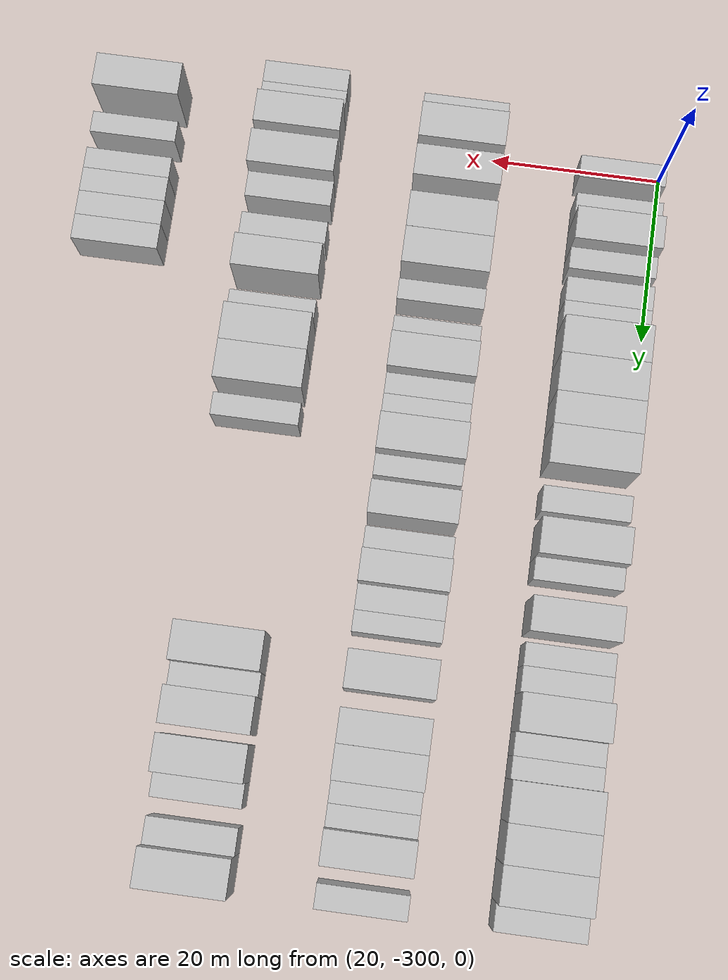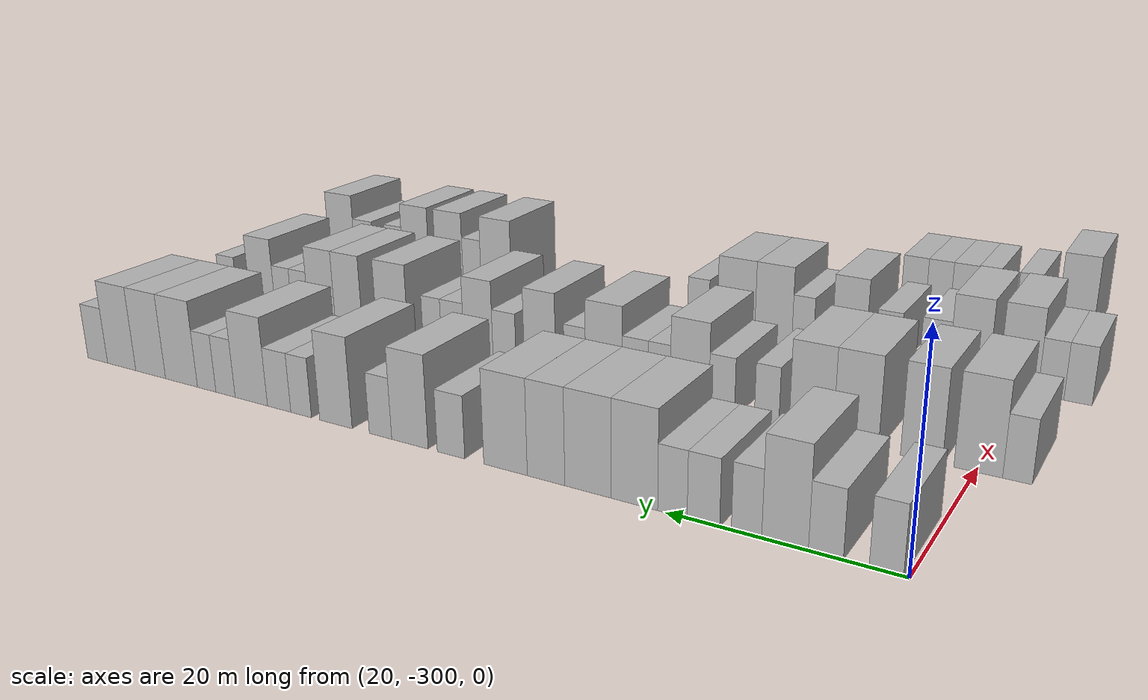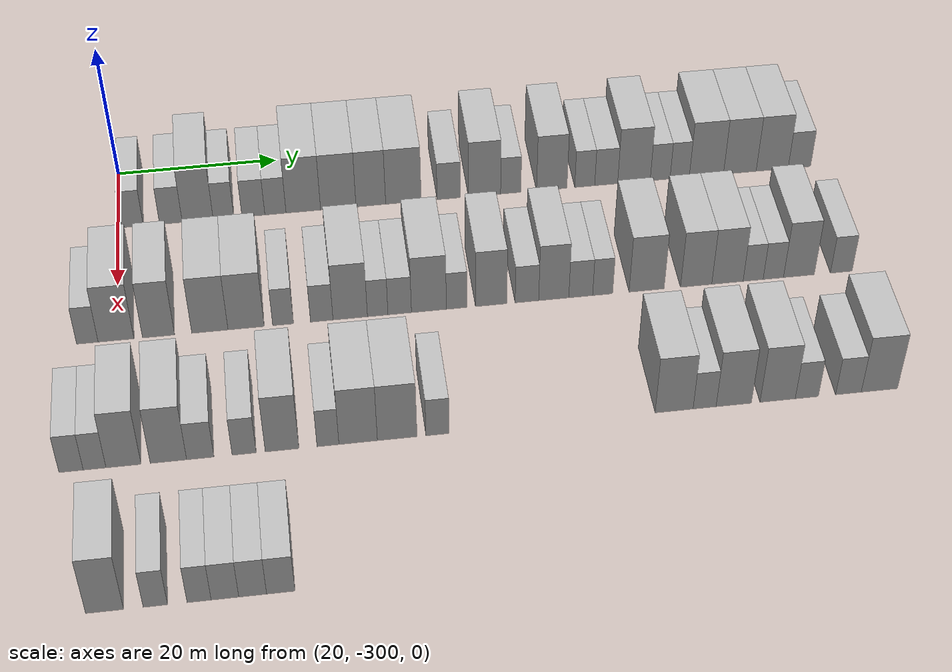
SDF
<sdf version="1.6">
 <world name="default">
  <model name="building_9">
   <static>1</static>
   <pose>25.0000 -298.2334 0 0.000000 0.000000 0.000000</pose>
   <link name="link">
    <pose>0 0 3.00 0 0 0</pose>
    <collision name="collision"><geometry><box><size>10.0000 2.6289 6.0000</size></box></geometry></collision>
    <visual name="visual">
     <cast_shadows>0</cast_shadows>
     <geometry><box><size>10.0000 2.6289 6.0000</size></box></geometry>
     <material>
      <script>
       <uri>model://HANNAS_wall/materials/scripts</uri>
       <uri>model://HANNAS_wall/materials/textures</uri>
       <name>vrc/HANNAS_wall</name>
      </script>
     </material>
    </visual>
   </link>
  </model>
  <model name="building_10">
   <static>1</static>
   <pose>25.0000 -293.5261 0 0.000000 0.000000 0.000000</pose>
   <link name="link">
    <pose>0 0 3.00 0 0 0</pose>
    <collision name="collision"><geometry><box><size>10.0000 2.7855 6.0000</size></box></geometry></collision>
    <visual name="visual">
     <cast_shadows>0</cast_shadows>
     <geometry><box><size>10.0000 2.7855 6.0000</size></box></geometry>
     <material>
      <script>
       <uri>model://HANNAS_wall/materials/scripts</uri>
       <uri>model://HANNAS_wall/materials/textures</uri>
       <name>vrc/HANNAS_wall</name>
      </script>
     </material>
    </visual>
   </link>
  </model>
  <model name="building_11">
   <static>1</static>
   <pose>25.0000 -290.2199 0 0.000000 0.000000 0.000000</pose>
   <link name="link">
    <pose>0 0 4.50 0 0 0</pose>
    <collision name="collision"><geometry><box><size>10.0000 3.8269 9.0000</size></box></geometry></collision>
    <visual name="visual">
     <cast_shadows>0</cast_shadows>
     <geometry><box><size>10.0000 3.8269 9.0000</size></box></geometry>
     <material>
      <script>
       <uri>model://HANNAS_wall/materials/scripts</uri>
       <uri>model://HANNAS_wall/materials/textures</uri>
       <name>vrc/HANNAS_wall</name>
      </script>
     </material>
    </visual>
   </link>
  </model>
  <model name="building_12">
   <static>1</static>
   <pose>25.0000 -287.0254 0 0.000000 0.000000 0.000000</pose>
   <link name="link">
    <pose>0 0 3.00 0 0 0</pose>
    <collision name="collision"><geometry><box><size>10.0000 2.5621 6.0000</size></box></geometry></collision>
    <visual name="visual">
     <cast_shadows>0</cast_shadows>
     <geometry><box><size>10.0000 2.5621 6.0000</size></box></geometry>
     <material>
      <script>
       <uri>model://HANNAS_wall/materials/scripts</uri>
       <uri>model://HANNAS_wall/materials/textures</uri>
       <name>vrc/HANNAS_wall</name>
      </script>
     </material>
    </visual>
   </link>
  </model>
  <model name="building_13">
   <static>1</static>
   <pose>25.0000 -283.3257 0 0.000000 0.000000 0.000000</pose>
   <link name="link">
    <pose>0 0 3.00 0 0 0</pose>
    <collision name="collision"><geometry><box><size>10.0000 2.8373 6.0000</size></box></geometry></collision>
    <visual name="visual">
     <cast_shadows>0</cast_shadows>
     <geometry><box><size>10.0000 2.8373 6.0000</size></box></geometry>
     <material>
      <script>
       <uri>model://HANNAS_wall/materials/scripts</uri>
       <uri>model://HANNAS_wall/materials/textures</uri>
       <name>vrc/HANNAS_wall</name>
      </script>
     </material>
    </visual>
   </link>
  </model>
  <model name="building_14">
   <static>1</static>
   <pose>25.0000 -280.5883 0 0.000000 0.000000 0.000000</pose>
   <link name="link">
    <pose>0 0 3.00 0 0 0</pose>
    <collision name="collision"><geometry><box><size>10.0000 2.6376 6.0000</size></box></geometry></collision>
    <visual name="visual">
     <cast_shadows>0</cast_shadows>
     <geometry><box><size>10.0000 2.6376 6.0000</size></box></geometry>
     <material>
      <script>
       <uri>model://HANNAS_wall/materials/scripts</uri>
       <uri>model://HANNAS_wall/materials/textures</uri>
       <name>vrc/HANNAS_wall</name>
      </script>
     </material>
    </visual>
   </link>
  </model>
  <model name="building_15">
   <static>1</static>
   <pose>25.0000 -277.1161 0 0.000000 0.000000 0.000000</pose>
   <link name="link">
    <pose>0 0 4.50 0 0 0</pose>
    <collision name="collision"><geometry><box><size>10.0000 4.3069 9.0000</size></box></geometry></collision>
    <visual name="visual">
     <cast_shadows>0</cast_shadows>
     <geometry><box><size>10.0000 4.3069 9.0000</size></box></geometry>
     <material>
      <script>
       <uri>model://HANNAS_wall/materials/scripts</uri>
       <uri>model://HANNAS_wall/materials/textures</uri>
       <name>vrc/HANNAS_wall</name>
      </script>
     </material>
    </visual>
   </link>
  </model>
  <model name="building_16">
   <static>1</static>
   <pose>25.0000 -272.7496 0 0.000000 0.000000 0.000000</pose>
   <link name="link">
    <pose>0 0 4.50 0 0 0</pose>
    <collision name="collision"><geometry><box><size>10.0000 4.4260 9.0000</size></box></geometry></collision>
    <visual name="visual">
     <cast_shadows>0</cast_shadows>
     <geometry><box><size>10.0000 4.4260 9.0000</size></box></geometry>
     <material>
      <script>
       <uri>model://HANNAS_wall/materials/scripts</uri>
       <uri>model://HANNAS_wall/materials/textures</uri>
       <name>vrc/HANNAS_wall</name>
      </script>
     </material>
    </visual>
   </link>
  </model>
  <model name="building_17">
   <static>1</static>
   <pose>25.0000 -268.6727 0 0.000000 0.000000 0.000000</pose>
   <link name="link">
    <pose>0 0 4.50 0 0 0</pose>
    <collision name="collision"><geometry><box><size>10.0000 3.7279 9.0000</size></box></geometry></collision>
    <visual name="visual">
     <cast_shadows>0</cast_shadows>
     <geometry><box><size>10.0000 3.7279 9.0000</size></box></geometry>
     <material>
      <script>
       <uri>model://HANNAS_wall/materials/scripts</uri>
       <uri>model://HANNAS_wall/materials/textures</uri>
       <name>vrc/HANNAS_wall</name>
      </script>
     </material>
    </visual>
   </link>
  </model>
  <model name="building_18">
   <static>1</static>
   <pose>25.0000 -264.5708 0 0.000000 0.000000 0.000000</pose>
   <link name="link">
    <pose>0 0 4.50 0 0 0</pose>
    <collision name="collision"><geometry><box><size>10.0000 4.4757 9.0000</size></box></geometry></collision>
    <visual name="visual">
     <cast_shadows>0</cast_shadows>
     <geometry><box><size>10.0000 4.4757 9.0000</size></box></geometry>
     <material>
      <script>
       <uri>model://HANNAS_wall/materials/scripts</uri>
       <uri>model://HANNAS_wall/materials/textures</uri>
       <name>vrc/HANNAS_wall</name>
      </script>
     </material>
    </visual>
   </link>
  </model>
  <model name="building_19">
   <static>1</static>
   <pose>25.0000 -258.8475 0 0.000000 0.000000 0.000000</pose>
   <link name="link">
    <pose>0 0 3.00 0 0 0</pose>
    <collision name="collision"><geometry><box><size>10.0000 2.9709 6.0000</size></box></geometry></collision>
    <visual name="visual">
     <cast_shadows>0</cast_shadows>
     <geometry><box><size>10.0000 2.9709 6.0000</size></box></geometry>
     <material>
      <script>
       <uri>model://HANNAS_wall/materials/scripts</uri>
       <uri>model://HANNAS_wall/materials/textures</uri>
       <name>vrc/HANNAS_wall</name>
      </script>
     </material>
    </visual>
   </link>
  </model>
  <model name="building_20">
   <static>1</static>
   <pose>25.0000 -254.3251 0 0.000000 0.000000 0.000000</pose>
   <link name="link">
    <pose>0 0 4.50 0 0 0</pose>
    <collision name="collision"><geometry><box><size>10.0000 4.0739 9.0000</size></box></geometry></collision>
    <visual name="visual">
     <cast_shadows>0</cast_shadows>
     <geometry><box><size>10.0000 4.0739 9.0000</size></box></geometry>
     <material>
      <script>
       <uri>model://HANNAS_wall/materials/scripts</uri>
       <uri>model://HANNAS_wall/materials/textures</uri>
       <name>vrc/HANNAS_wall</name>
      </script>
     </material>
    </visual>
   </link>
  </model>
  <model name="building_21">
   <static>1</static>
   <pose>25.0000 -251.0014 0 0.000000 0.000000 0.000000</pose>
   <link name="link">
    <pose>0 0 3.00 0 0 0</pose>
    <collision name="collision"><geometry><box><size>10.0000 2.5734 6.0000</size></box></geometry></collision>
    <visual name="visual">
     <cast_shadows>0</cast_shadows>
     <geometry><box><size>10.0000 2.5734 6.0000</size></box></geometry>
     <material>
      <script>
       <uri>model://HANNAS_wall/materials/scripts</uri>
       <uri>model://HANNAS_wall/materials/textures</uri>
       <name>vrc/HANNAS_wall</name>
      </script>
     </material>
    </visual>
   </link>
  </model>
  <model name="building_22">
   <static>1</static>
   <pose>25.0000 -245.7738 0 0.000000 0.000000 0.000000</pose>
   <link name="link">
    <pose>0 0 4.50 0 0 0</pose>
    <collision name="collision"><geometry><box><size>10.0000 3.8818 9.0000</size></box></geometry></collision>
    <visual name="visual">
     <cast_shadows>0</cast_shadows>
     <geometry><box><size>10.0000 3.8818 9.0000</size></box></geometry>
     <material>
      <script>
       <uri>model://HANNAS_wall/materials/scripts</uri>
       <uri>model://HANNAS_wall/materials/textures</uri>
       <name>vrc/HANNAS_wall</name>
      </script>
     </material>
    </visual>
   </link>
  </model>
  <model name="building_23">
   <static>1</static>
   <pose>25.0000 -241.5540 0 0.000000 0.000000 0.000000</pose>
   <link name="link">
    <pose>0 0 3.00 0 0 0</pose>
    <collision name="collision"><geometry><box><size>10.0000 2.5579 6.0000</size></box></geometry></collision>
    <visual name="visual">
     <cast_shadows>0</cast_shadows>
     <geometry><box><size>10.0000 2.5579 6.0000</size></box></geometry>
     <material>
      <script>
       <uri>model://HANNAS_wall/materials/scripts</uri>
       <uri>model://HANNAS_wall/materials/textures</uri>
       <name>vrc/HANNAS_wall</name>
      </script>
     </material>
    </visual>
   </link>
  </model>
  <model name="building_24">
   <static>1</static>
   <pose>25.0000 -238.8029 0 0.000000 0.000000 0.000000</pose>
   <link name="link">
    <pose>0 0 3.00 0 0 0</pose>
    <collision name="collision"><geometry><box><size>10.0000 2.9443 6.0000</size></box></geometry></collision>
    <visual name="visual">
     <cast_shadows>0</cast_shadows>
     <geometry><box><size>10.0000 2.9443 6.0000</size></box></geometry>
     <material>
      <script>
       <uri>model://HANNAS_wall/materials/scripts</uri>
       <uri>model://HANNAS_wall/materials/textures</uri>
       <name>vrc/HANNAS_wall</name>
      </script>
     </material>
    </visual>
   </link>
  </model>
  <model name="building_25">
   <static>1</static>
   <pose>25.0000 -235.2367 0 0.000000 0.000000 0.000000</pose>
   <link name="link">
    <pose>0 0 4.50 0 0 0</pose>
    <collision name="collision"><geometry><box><size>10.0000 4.1882 9.0000</size></box></geometry></collision>
    <visual name="visual">
     <cast_shadows>0</cast_shadows>
     <geometry><box><size>10.0000 4.1882 9.0000</size></box></geometry>
     <material>
      <script>
       <uri>model://HANNAS_wall/materials/scripts</uri>
       <uri>model://HANNAS_wall/materials/textures</uri>
       <name>vrc/HANNAS_wall</name>
      </script>
     </material>
    </visual>
   </link>
  </model>
  <model name="building_26">
   <static>1</static>
   <pose>25.0000 -231.8609 0 0.000000 0.000000 0.000000</pose>
   <link name="link">
    <pose>0 0 3.00 0 0 0</pose>
    <collision name="collision"><geometry><box><size>10.0000 2.5635 6.0000</size></box></geometry></collision>
    <visual name="visual">
     <cast_shadows>0</cast_shadows>
     <geometry><box><size>10.0000 2.5635 6.0000</size></box></geometry>
     <material>
      <script>
       <uri>model://HANNAS_wall/materials/scripts</uri>
       <uri>model://HANNAS_wall/materials/textures</uri>
       <name>vrc/HANNAS_wall</name>
      </script>
     </material>
    </visual>
   </link>
  </model>
  <model name="building_27">
   <static>1</static>
   <pose>25.0000 -229.3347 0 0.000000 0.000000 0.000000</pose>
   <link name="link">
    <pose>0 0 3.00 0 0 0</pose>
    <collision name="collision"><geometry><box><size>10.0000 2.4889 6.0000</size></box></geometry></collision>
    <visual name="visual">
     <cast_shadows>0</cast_shadows>
     <geometry><box><size>10.0000 2.4889 6.0000</size></box></geometry>
     <material>
      <script>
       <uri>model://HANNAS_wall/materials/scripts</uri>
       <uri>model://HANNAS_wall/materials/textures</uri>
       <name>vrc/HANNAS_wall</name>
      </script>
     </material>
    </visual>
   </link>
  </model>
  <model name="building_28">
   <static>1</static>
   <pose>25.0000 -225.8748 0 0.000000 0.000000 0.000000</pose>
   <link name="link">
    <pose>0 0 4.50 0 0 0</pose>
    <collision name="collision"><geometry><box><size>10.0000 4.4308 9.0000</size></box></geometry></collision>
    <visual name="visual">
     <cast_shadows>0</cast_shadows>
     <geometry><box><size>10.0000 4.4308 9.0000</size></box></geometry>
     <material>
      <script>
       <uri>model://HANNAS_wall/materials/scripts</uri>
       <uri>model://HANNAS_wall/materials/textures</uri>
       <name>vrc/HANNAS_wall</name>
      </script>
     </material>
    </visual>
   </link>
  </model>
  <model name="building_29">
   <static>1</static>
   <pose>25.0000 -221.5319 0 0.000000 0.000000 0.000000</pose>
   <link name="link">
    <pose>0 0 4.50 0 0 0</pose>
    <collision name="collision"><geometry><box><size>10.0000 4.2551 9.0000</size></box></geometry></collision>
    <visual name="visual">
     <cast_shadows>0</cast_shadows>
     <geometry><box><size>10.0000 4.2551 9.0000</size></box></geometry>
     <material>
      <script>
       <uri>model://HANNAS_wall/materials/scripts</uri>
       <uri>model://HANNAS_wall/materials/textures</uri>
       <name>vrc/HANNAS_wall</name>
      </script>
     </material>
    </visual>
   </link>
  </model>
  <model name="building_30">
   <static>1</static>
   <pose>25.0000 -217.3223 0 0.000000 0.000000 0.000000</pose>
   <link name="link">
    <pose>0 0 4.50 0 0 0</pose>
    <collision name="collision"><geometry><box><size>10.0000 4.1640 9.0000</size></box></geometry></collision>
    <visual name="visual">
     <cast_shadows>0</cast_shadows>
     <geometry><box><size>10.0000 4.1640 9.0000</size></box></geometry>
     <material>
      <script>
       <uri>model://HANNAS_wall/materials/scripts</uri>
       <uri>model://HANNAS_wall/materials/textures</uri>
       <name>vrc/HANNAS_wall</name>
      </script>
     </material>
    </visual>
   </link>
  </model>
  <model name="building_31">
   <static>1</static>
   <pose>25.0000 -213.7689 0 0.000000 0.000000 0.000000</pose>
   <link name="link">
    <pose>0 0 3.00 0 0 0</pose>
    <collision name="collision"><geometry><box><size>10.0000 2.9429 6.0000</size></box></geometry></collision>
    <visual name="visual">
     <cast_shadows>0</cast_shadows>
     <geometry><box><size>10.0000 2.9429 6.0000</size></box></geometry>
     <material>
      <script>
       <uri>model://HANNAS_wall/materials/scripts</uri>
       <uri>model://HANNAS_wall/materials/textures</uri>
       <name>vrc/HANNAS_wall</name>
      </script>
     </material>
    </visual>
   </link>
  </model>
  <model name="building_190">
   <static>1</static>
   <pose>44.0000 -303.5347 0 0.000000 0.000000 0.000000</pose>
   <link name="link">
    <pose>0 0 3.00 0 0 0</pose>
    <collision name="collision"><geometry><box><size>10.0000 2.4771 6.0000</size></box></geometry></collision>
    <visual name="visual">
     <cast_shadows>0</cast_shadows>
     <geometry><box><size>10.0000 2.4771 6.0000</size></box></geometry>
     <material>
      <script>
       <uri>model://HANNAS_wall/materials/scripts</uri>
       <uri>model://HANNAS_wall/materials/textures</uri>
       <name>vrc/HANNAS_wall</name>
      </script>
     </material>
    </visual>
   </link>
  </model>
  <model name="building_191">
   <static>1</static>
   <pose>44.0000 -300.2235 0 0.000000 0.000000 0.000000</pose>
   <link name="link">
    <pose>0 0 4.50 0 0 0</pose>
    <collision name="collision"><geometry><box><size>10.0000 4.1454 9.0000</size></box></geometry></collision>
    <visual name="visual">
     <cast_shadows>0</cast_shadows>
     <geometry><box><size>10.0000 4.1454 9.0000</size></box></geometry>
     <material>
      <script>
       <uri>model://HANNAS_wall/materials/scripts</uri>
       <uri>model://HANNAS_wall/materials/textures</uri>
       <name>vrc/HANNAS_wall</name>
      </script>
     </material>
    </visual>
   </link>
  </model>
  <model name="building_192">
   <static>1</static>
   <pose>44.0000 -295.2904 0 0.000000 0.000000 0.000000</pose>
   <link name="link">
    <pose>0 0 4.50 0 0 0</pose>
    <collision name="collision"><geometry><box><size>10.0000 3.7208 9.0000</size></box></geometry></collision>
    <visual name="visual">
     <cast_shadows>0</cast_shadows>
     <geometry><box><size>10.0000 3.7208 9.0000</size></box></geometry>
     <material>
      <script>
       <uri>model://HANNAS_wall/materials/scripts</uri>
       <uri>model://HANNAS_wall/materials/textures</uri>
       <name>vrc/HANNAS_wall</name>
      </script>
     </material>
    </visual>
   </link>
  </model>
  <model name="building_193">
   <static>1</static>
   <pose>44.0000 -289.3147 0 0.000000 0.000000 0.000000</pose>
   <link name="link">
    <pose>0 0 4.50 0 0 0</pose>
    <collision name="collision"><geometry><box><size>10.0000 4.2306 9.0000</size></box></geometry></collision>
    <visual name="visual">
     <cast_shadows>0</cast_shadows>
     <geometry><box><size>10.0000 4.2306 9.0000</size></box></geometry>
     <material>
      <script>
       <uri>model://HANNAS_wall/materials/scripts</uri>
       <uri>model://HANNAS_wall/materials/textures</uri>
       <name>vrc/HANNAS_wall</name>
      </script>
     </material>
    </visual>
   </link>
  </model>
  <model name="building_194">
   <static>1</static>
   <pose>44.0000 -285.0796 0 0.000000 0.000000 0.000000</pose>
   <link name="link">
    <pose>0 0 4.50 0 0 0</pose>
    <collision name="collision"><geometry><box><size>10.0000 4.2394 9.0000</size></box></geometry></collision>
    <visual name="visual">
     <cast_shadows>0</cast_shadows>
     <geometry><box><size>10.0000 4.2394 9.0000</size></box></geometry>
     <material>
      <script>
       <uri>model://HANNAS_wall/materials/scripts</uri>
       <uri>model://HANNAS_wall/materials/textures</uri>
       <name>vrc/HANNAS_wall</name>
      </script>
     </material>
    </visual>
   </link>
  </model>
  <model name="building_195">
   <static>1</static>
   <pose>44.0000 -280.7379 0 0.000000 0.000000 0.000000</pose>
   <link name="link">
    <pose>0 0 3.00 0 0 0</pose>
    <collision name="collision"><geometry><box><size>10.0000 2.4440 6.0000</size></box></geometry></collision>
    <visual name="visual">
     <cast_shadows>0</cast_shadows>
     <geometry><box><size>10.0000 2.4440 6.0000</size></box></geometry>
     <material>
      <script>
       <uri>model://HANNAS_wall/materials/scripts</uri>
       <uri>model://HANNAS_wall/materials/textures</uri>
       <name>vrc/HANNAS_wall</name>
      </script>
     </material>
    </visual>
   </link>
  </model>
  <model name="building_196">
   <static>1</static>
   <pose>44.0000 -276.1926 0 0.000000 0.000000 0.000000</pose>
   <link name="link">
    <pose>0 0 3.00 0 0 0</pose>
    <collision name="collision"><geometry><box><size>10.0000 2.6465 6.0000</size></box></geometry></collision>
    <visual name="visual">
     <cast_shadows>0</cast_shadows>
     <geometry><box><size>10.0000 2.6465 6.0000</size></box></geometry>
     <material>
      <script>
       <uri>model://HANNAS_wall/materials/scripts</uri>
       <uri>model://HANNAS_wall/materials/textures</uri>
       <name>vrc/HANNAS_wall</name>
      </script>
     </material>
    </visual>
   </link>
  </model>
  <model name="building_197">
   <static>1</static>
   <pose>44.0000 -272.8329 0 0.000000 0.000000 0.000000</pose>
   <link name="link">
    <pose>0 0 4.50 0 0 0</pose>
    <collision name="collision"><geometry><box><size>10.0000 4.0730 9.0000</size></box></geometry></collision>
    <visual name="visual">
     <cast_shadows>0</cast_shadows>
     <geometry><box><size>10.0000 4.0730 9.0000</size></box></geometry>
     <material>
      <script>
       <uri>model://HANNAS_wall/materials/scripts</uri>
       <uri>model://HANNAS_wall/materials/textures</uri>
       <name>vrc/HANNAS_wall</name>
      </script>
     </material>
    </visual>
   </link>
  </model>
  <model name="building_198">
   <static>1</static>
   <pose>44.0000 -269.5819 0 0.000000 0.000000 0.000000</pose>
   <link name="link">
    <pose>0 0 3.00 0 0 0</pose>
    <collision name="collision"><geometry><box><size>10.0000 2.4291 6.0000</size></box></geometry></collision>
    <visual name="visual">
     <cast_shadows>0</cast_shadows>
     <geometry><box><size>10.0000 2.4291 6.0000</size></box></geometry>
     <material>
      <script>
       <uri>model://HANNAS_wall/materials/scripts</uri>
       <uri>model://HANNAS_wall/materials/textures</uri>
       <name>vrc/HANNAS_wall</name>
      </script>
     </material>
    </visual>
   </link>
  </model>
  <model name="building_199">
   <static>1</static>
   <pose>44.0000 -266.9707 0 0.000000 0.000000 0.000000</pose>
   <link name="link">
    <pose>0 0 3.00 0 0 0</pose>
    <collision name="collision"><geometry><box><size>10.0000 2.7932 6.0000</size></box></geometry></collision>
    <visual name="visual">
     <cast_shadows>0</cast_shadows>
     <geometry><box><size>10.0000 2.7932 6.0000</size></box></geometry>
     <material>
      <script>
       <uri>model://HANNAS_wall/materials/scripts</uri>
       <uri>model://HANNAS_wall/materials/textures</uri>
       <name>vrc/HANNAS_wall</name>
      </script>
     </material>
    </visual>
   </link>
  </model>
  <model name="building_200">
   <static>1</static>
   <pose>44.0000 -263.4921 0 0.000000 0.000000 0.000000</pose>
   <link name="link">
    <pose>0 0 4.50 0 0 0</pose>
    <collision name="collision"><geometry><box><size>10.0000 4.1641 9.0000</size></box></geometry></collision>
    <visual name="visual">
     <cast_shadows>0</cast_shadows>
     <geometry><box><size>10.0000 4.1641 9.0000</size></box></geometry>
     <material>
      <script>
       <uri>model://HANNAS_wall/materials/scripts</uri>
       <uri>model://HANNAS_wall/materials/textures</uri>
       <name>vrc/HANNAS_wall</name>
      </script>
     </material>
    </visual>
   </link>
  </model>
  <model name="building_201">
   <static>1</static>
   <pose>44.0000 -260.1705 0 0.000000 0.000000 0.000000</pose>
   <link name="link">
    <pose>0 0 3.00 0 0 0</pose>
    <collision name="collision"><geometry><box><size>10.0000 2.4790 6.0000</size></box></geometry></collision>
    <visual name="visual">
     <cast_shadows>0</cast_shadows>
     <geometry><box><size>10.0000 2.4790 6.0000</size></box></geometry>
     <material>
      <script>
       <uri>model://HANNAS_wall/materials/scripts</uri>
       <uri>model://HANNAS_wall/materials/textures</uri>
       <name>vrc/HANNAS_wall</name>
      </script>
     </material>
    </visual>
   </link>
  </model>
  <model name="building_202">
   <static>1</static>
   <pose>44.0000 -256.0577 0 0.000000 0.000000 0.000000</pose>
   <link name="link">
    <pose>0 0 4.50 0 0 0</pose>
    <collision name="collision"><geometry><box><size>10.0000 3.7467 9.0000</size></box></geometry></collision>
    <visual name="visual">
     <cast_shadows>0</cast_shadows>
     <geometry><box><size>10.0000 3.7467 9.0000</size></box></geometry>
     <material>
      <script>
       <uri>model://HANNAS_wall/materials/scripts</uri>
       <uri>model://HANNAS_wall/materials/textures</uri>
       <name>vrc/HANNAS_wall</name>
      </script>
     </material>
    </visual>
   </link>
  </model>
  <model name="building_203">
   <static>1</static>
   <pose>44.0000 -251.7704 0 0.000000 0.000000 0.000000</pose>
   <link name="link">
    <pose>0 0 3.00 0 0 0</pose>
    <collision name="collision"><geometry><box><size>10.0000 2.8279 6.0000</size></box></geometry></collision>
    <visual name="visual">
     <cast_shadows>0</cast_shadows>
     <geometry><box><size>10.0000 2.8279 6.0000</size></box></geometry>
     <material>
      <script>
       <uri>model://HANNAS_wall/materials/scripts</uri>
       <uri>model://HANNAS_wall/materials/textures</uri>
       <name>vrc/HANNAS_wall</name>
      </script>
     </material>
    </visual>
   </link>
  </model>
  <model name="building_204">
   <static>1</static>
   <pose>44.0000 -248.5393 0 0.000000 0.000000 0.000000</pose>
   <link name="link">
    <pose>0 0 4.50 0 0 0</pose>
    <collision name="collision"><geometry><box><size>10.0000 3.6343 9.0000</size></box></geometry></collision>
    <visual name="visual">
     <cast_shadows>0</cast_shadows>
     <geometry><box><size>10.0000 3.6343 9.0000</size></box></geometry>
     <material>
      <script>
       <uri>model://HANNAS_wall/materials/scripts</uri>
       <uri>model://HANNAS_wall/materials/textures</uri>
       <name>vrc/HANNAS_wall</name>
      </script>
     </material>
    </visual>
   </link>
  </model>
  <model name="building_205">
   <static>1</static>
   <pose>44.0000 -245.2808 0 0.000000 0.000000 0.000000</pose>
   <link name="link">
    <pose>0 0 3.00 0 0 0</pose>
    <collision name="collision"><geometry><box><size>10.0000 2.8827 6.0000</size></box></geometry></collision>
    <visual name="visual">
     <cast_shadows>0</cast_shadows>
     <geometry><box><size>10.0000 2.8827 6.0000</size></box></geometry>
     <material>
      <script>
       <uri>model://HANNAS_wall/materials/scripts</uri>
       <uri>model://HANNAS_wall/materials/textures</uri>
       <name>vrc/HANNAS_wall</name>
      </script>
     </material>
    </visual>
   </link>
  </model>
  <model name="building_206">
   <static>1</static>
   <pose>44.0000 -242.6287 0 0.000000 0.000000 0.000000</pose>
   <link name="link">
    <pose>0 0 3.00 0 0 0</pose>
    <collision name="collision"><geometry><box><size>10.0000 2.4214 6.0000</size></box></geometry></collision>
    <visual name="visual">
     <cast_shadows>0</cast_shadows>
     <geometry><box><size>10.0000 2.4214 6.0000</size></box></geometry>
     <material>
      <script>
       <uri>model://HANNAS_wall/materials/scripts</uri>
       <uri>model://HANNAS_wall/materials/textures</uri>
       <name>vrc/HANNAS_wall</name>
      </script>
     </material>
    </visual>
   </link>
  </model>
  <model name="building_207">
   <static>1</static>
   <pose>44.0000 -237.2893 0 0.000000 0.000000 0.000000</pose>
   <link name="link">
    <pose>0 0 4.50 0 0 0</pose>
    <collision name="collision"><geometry><box><size>10.0000 4.2575 9.0000</size></box></geometry></collision>
    <visual name="visual">
     <cast_shadows>0</cast_shadows>
     <geometry><box><size>10.0000 4.2575 9.0000</size></box></geometry>
     <material>
      <script>
       <uri>model://HANNAS_wall/materials/scripts</uri>
       <uri>model://HANNAS_wall/materials/textures</uri>
       <name>vrc/HANNAS_wall</name>
      </script>
     </material>
    </visual>
   </link>
  </model>
  <model name="building_208">
   <static>1</static>
   <pose>44.0000 -231.2517 0 0.000000 0.000000 0.000000</pose>
   <link name="link">
    <pose>0 0 4.50 0 0 0</pose>
    <collision name="collision"><geometry><box><size>10.0000 3.8177 9.0000</size></box></geometry></collision>
    <visual name="visual">
     <cast_shadows>0</cast_shadows>
     <geometry><box><size>10.0000 3.8177 9.0000</size></box></geometry>
     <material>
      <script>
       <uri>model://HANNAS_wall/materials/scripts</uri>
       <uri>model://HANNAS_wall/materials/textures</uri>
       <name>vrc/HANNAS_wall</name>
      </script>
     </material>
    </visual>
   </link>
  </model>
  <model name="building_209">
   <static>1</static>
   <pose>44.0000 -227.4219 0 0.000000 0.000000 0.000000</pose>
   <link name="link">
    <pose>0 0 4.50 0 0 0</pose>
    <collision name="collision"><geometry><box><size>10.0000 3.8418 9.0000</size></box></geometry></collision>
    <visual name="visual">
     <cast_shadows>0</cast_shadows>
     <geometry><box><size>10.0000 3.8418 9.0000</size></box></geometry>
     <material>
      <script>
       <uri>model://HANNAS_wall/materials/scripts</uri>
       <uri>model://HANNAS_wall/materials/textures</uri>
       <name>vrc/HANNAS_wall</name>
      </script>
     </material>
    </visual>
   </link>
  </model>
  <model name="building_210">
   <static>1</static>
   <pose>44.0000 -224.2671 0 0.000000 0.000000 0.000000</pose>
   <link name="link">
    <pose>0 0 3.00 0 0 0</pose>
    <collision name="collision"><geometry><box><size>10.0000 2.4679 6.0000</size></box></geometry></collision>
    <visual name="visual">
     <cast_shadows>0</cast_shadows>
     <geometry><box><size>10.0000 2.4679 6.0000</size></box></geometry>
     <material>
      <script>
       <uri>model://HANNAS_wall/materials/scripts</uri>
       <uri>model://HANNAS_wall/materials/textures</uri>
       <name>vrc/HANNAS_wall</name>
      </script>
     </material>
    </visual>
   </link>
  </model>
  <model name="building_211">
   <static>1</static>
   <pose>44.0000 -221.7772 0 0.000000 0.000000 0.000000</pose>
   <link name="link">
    <pose>0 0 3.00 0 0 0</pose>
    <collision name="collision"><geometry><box><size>10.0000 2.5117 6.0000</size></box></geometry></collision>
    <visual name="visual">
     <cast_shadows>0</cast_shadows>
     <geometry><box><size>10.0000 2.5117 6.0000</size></box></geometry>
     <material>
      <script>
       <uri>model://HANNAS_wall/materials/scripts</uri>
       <uri>model://HANNAS_wall/materials/textures</uri>
       <name>vrc/HANNAS_wall</name>
      </script>
     </material>
    </visual>
   </link>
  </model>
  <model name="building_212">
   <static>1</static>
   <pose>44.0000 -218.6221 0 0.000000 0.000000 0.000000</pose>
   <link name="link">
    <pose>0 0 4.50 0 0 0</pose>
    <collision name="collision"><geometry><box><size>10.0000 3.7985 9.0000</size></box></geometry></collision>
    <visual name="visual">
     <cast_shadows>0</cast_shadows>
     <geometry><box><size>10.0000 3.7985 9.0000</size></box></geometry>
     <material>
      <script>
       <uri>model://HANNAS_wall/materials/scripts</uri>
       <uri>model://HANNAS_wall/materials/textures</uri>
       <name>vrc/HANNAS_wall</name>
      </script>
     </material>
    </visual>
   </link>
  </model>
  <model name="building_213">
   <static>1</static>
   <pose>44.0000 -213.3801 0 0.000000 0.000000 0.000000</pose>
   <link name="link">
    <pose>0 0 3.00 0 0 0</pose>
    <collision name="collision"><geometry><box><size>10.0000 2.6856 6.0000</size></box></geometry></collision>
    <visual name="visual">
     <cast_shadows>0</cast_shadows>
     <geometry><box><size>10.0000 2.6856 6.0000</size></box></geometry>
     <material>
      <script>
       <uri>model://HANNAS_wall/materials/scripts</uri>
       <uri>model://HANNAS_wall/materials/textures</uri>
       <name>vrc/HANNAS_wall</name>
      </script>
     </material>
    </visual>
   </link>
  </model>
  <model name="building_371">
   <static>1</static>
   <pose>63.0000 -305.0564 0 0.000000 0.000000 0.000000</pose>
   <link name="link">
    <pose>0 0 3.00 0 0 0</pose>
    <collision name="collision"><geometry><box><size>10.0000 2.6308 6.0000</size></box></geometry></collision>
    <visual name="visual">
     <cast_shadows>0</cast_shadows>
     <geometry><box><size>10.0000 2.6308 6.0000</size></box></geometry>
     <material>
      <script>
       <uri>model://HANNAS_wall/materials/scripts</uri>
       <uri>model://HANNAS_wall/materials/textures</uri>
       <name>vrc/HANNAS_wall</name>
      </script>
     </material>
    </visual>
   </link>
  </model>
  <model name="building_372">
   <static>1</static>
   <pose>63.0000 -302.5045 0 0.000000 0.000000 0.000000</pose>
   <link name="link">
    <pose>0 0 3.00 0 0 0</pose>
    <collision name="collision"><geometry><box><size>10.0000 2.4731 6.0000</size></box></geometry></collision>
    <visual name="visual">
     <cast_shadows>0</cast_shadows>
     <geometry><box><size>10.0000 2.4731 6.0000</size></box></geometry>
     <material>
      <script>
       <uri>model://HANNAS_wall/materials/scripts</uri>
       <uri>model://HANNAS_wall/materials/textures</uri>
       <name>vrc/HANNAS_wall</name>
      </script>
     </material>
    </visual>
   </link>
  </model>
  <model name="building_373">
   <static>1</static>
   <pose>63.0000 -299.3580 0 0.000000 0.000000 0.000000</pose>
   <link name="link">
    <pose>0 0 4.50 0 0 0</pose>
    <collision name="collision"><geometry><box><size>10.0000 3.8198 9.0000</size></box></geometry></collision>
    <visual name="visual">
     <cast_shadows>0</cast_shadows>
     <geometry><box><size>10.0000 3.8198 9.0000</size></box></geometry>
     <material>
      <script>
       <uri>model://HANNAS_wall/materials/scripts</uri>
       <uri>model://HANNAS_wall/materials/textures</uri>
       <name>vrc/HANNAS_wall</name>
      </script>
     </material>
    </visual>
   </link>
  </model>
  <model name="building_374">
   <static>1</static>
   <pose>63.0000 -294.4588 0 0.000000 0.000000 0.000000</pose>
   <link name="link">
    <pose>0 0 4.50 0 0 0</pose>
    <collision name="collision"><geometry><box><size>10.0000 3.9787 9.0000</size></box></geometry></collision>
    <visual name="visual">
     <cast_shadows>0</cast_shadows>
     <geometry><box><size>10.0000 3.9787 9.0000</size></box></geometry>
     <material>
      <script>
       <uri>model://HANNAS_wall/materials/scripts</uri>
       <uri>model://HANNAS_wall/materials/textures</uri>
       <name>vrc/HANNAS_wall</name>
      </script>
     </material>
    </visual>
   </link>
  </model>
  <model name="building_375">
   <static>1</static>
   <pose>63.0000 -290.9715 0 0.000000 0.000000 0.000000</pose>
   <link name="link">
    <pose>0 0 3.00 0 0 0</pose>
    <collision name="collision"><geometry><box><size>10.0000 2.9959 6.0000</size></box></geometry></collision>
    <visual name="visual">
     <cast_shadows>0</cast_shadows>
     <geometry><box><size>10.0000 2.9959 6.0000</size></box></geometry>
     <material>
      <script>
       <uri>model://HANNAS_wall/materials/scripts</uri>
       <uri>model://HANNAS_wall/materials/textures</uri>
       <name>vrc/HANNAS_wall</name>
      </script>
     </material>
    </visual>
   </link>
  </model>
  <model name="building_376">
   <static>1</static>
   <pose>63.0000 -286.1486 0 0.000000 0.000000 0.000000</pose>
   <link name="link">
    <pose>0 0 3.00 0 0 0</pose>
    <collision name="collision"><geometry><box><size>10.0000 2.6498 6.0000</size></box></geometry></collision>
    <visual name="visual">
     <cast_shadows>0</cast_shadows>
     <geometry><box><size>10.0000 2.6498 6.0000</size></box></geometry>
     <material>
      <script>
       <uri>model://HANNAS_wall/materials/scripts</uri>
       <uri>model://HANNAS_wall/materials/textures</uri>
       <name>vrc/HANNAS_wall</name>
      </script>
     </material>
    </visual>
   </link>
  </model>
  <model name="building_377">
   <static>1</static>
   <pose>63.0000 -281.9613 0 0.000000 0.000000 0.000000</pose>
   <link name="link">
    <pose>0 0 4.50 0 0 0</pose>
    <collision name="collision"><geometry><box><size>10.0000 3.7246 9.0000</size></box></geometry></collision>
    <visual name="visual">
     <cast_shadows>0</cast_shadows>
     <geometry><box><size>10.0000 3.7246 9.0000</size></box></geometry>
     <material>
      <script>
       <uri>model://HANNAS_wall/materials/scripts</uri>
       <uri>model://HANNAS_wall/materials/textures</uri>
       <name>vrc/HANNAS_wall</name>
      </script>
     </material>
    </visual>
   </link>
  </model>
  <model name="building_378">
   <static>1</static>
   <pose>63.0000 -276.8846 0 0.000000 0.000000 0.000000</pose>
   <link name="link">
    <pose>0 0 3.00 0 0 0</pose>
    <collision name="collision"><geometry><box><size>10.0000 2.4287 6.0000</size></box></geometry></collision>
    <visual name="visual">
     <cast_shadows>0</cast_shadows>
     <geometry><box><size>10.0000 2.4287 6.0000</size></box></geometry>
     <material>
      <script>
       <uri>model://HANNAS_wall/materials/scripts</uri>
       <uri>model://HANNAS_wall/materials/textures</uri>
       <name>vrc/HANNAS_wall</name>
      </script>
     </material>
    </visual>
   </link>
  </model>
  <model name="building_379">
   <static>1</static>
   <pose>63.0000 -273.5285 0 0.000000 0.000000 0.000000</pose>
   <link name="link">
    <pose>0 0 4.50 0 0 0</pose>
    <collision name="collision"><geometry><box><size>10.0000 4.2835 9.0000</size></box></geometry></collision>
    <visual name="visual">
     <cast_shadows>0</cast_shadows>
     <geometry><box><size>10.0000 4.2835 9.0000</size></box></geometry>
     <material>
      <script>
       <uri>model://HANNAS_wall/materials/scripts</uri>
       <uri>model://HANNAS_wall/materials/textures</uri>
       <name>vrc/HANNAS_wall</name>
      </script>
     </material>
    </visual>
   </link>
  </model>
  <model name="building_380">
   <static>1</static>
   <pose>63.0000 -269.1720 0 0.000000 0.000000 0.000000</pose>
   <link name="link">
    <pose>0 0 4.50 0 0 0</pose>
    <collision name="collision"><geometry><box><size>10.0000 4.4294 9.0000</size></box></geometry></collision>
    <visual name="visual">
     <cast_shadows>0</cast_shadows>
     <geometry><box><size>10.0000 4.4294 9.0000</size></box></geometry>
     <material>
      <script>
       <uri>model://HANNAS_wall/materials/scripts</uri>
       <uri>model://HANNAS_wall/materials/textures</uri>
       <name>vrc/HANNAS_wall</name>
      </script>
     </material>
    </visual>
   </link>
  </model>
  <model name="building_381">
   <static>1</static>
   <pose>63.0000 -264.6550 0 0.000000 0.000000 0.000000</pose>
   <link name="link">
    <pose>0 0 3.00 0 0 0</pose>
    <collision name="collision"><geometry><box><size>10.0000 2.6046 6.0000</size></box></geometry></collision>
    <visual name="visual">
     <cast_shadows>0</cast_shadows>
     <geometry><box><size>10.0000 2.6046 6.0000</size></box></geometry>
     <material>
      <script>
       <uri>model://HANNAS_wall/materials/scripts</uri>
       <uri>model://HANNAS_wall/materials/textures</uri>
       <name>vrc/HANNAS_wall</name>
      </script>
     </material>
    </visual>
   </link>
  </model>
  <model name="building_382">
   <static>1</static>
   <pose>63.0000 -237.8261 0 0.000000 0.000000 0.000000</pose>
   <link name="link">
    <pose>0 0 4.50 0 0 0</pose>
    <collision name="collision"><geometry><box><size>10.0000 4.3511 9.0000</size></box></geometry></collision>
    <visual name="visual">
     <cast_shadows>0</cast_shadows>
     <geometry><box><size>10.0000 4.3511 9.0000</size></box></geometry>
     <material>
      <script>
       <uri>model://HANNAS_wall/materials/scripts</uri>
       <uri>model://HANNAS_wall/materials/textures</uri>
       <name>vrc/HANNAS_wall</name>
      </script>
     </material>
    </visual>
   </link>
  </model>
  <model name="building_383">
   <static>1</static>
   <pose>63.0000 -234.3246 0 0.000000 0.000000 0.000000</pose>
   <link name="link">
    <pose>0 0 3.00 0 0 0</pose>
    <collision name="collision"><geometry><box><size>10.0000 2.6518 6.0000</size></box></geometry></collision>
    <visual name="visual">
     <cast_shadows>0</cast_shadows>
     <geometry><box><size>10.0000 2.6518 6.0000</size></box></geometry>
     <material>
      <script>
       <uri>model://HANNAS_wall/materials/scripts</uri>
       <uri>model://HANNAS_wall/materials/textures</uri>
       <name>vrc/HANNAS_wall</name>
      </script>
     </material>
    </visual>
   </link>
  </model>
  <model name="building_384">
   <static>1</static>
   <pose>63.0000 -230.9627 0 0.000000 0.000000 0.000000</pose>
   <link name="link">
    <pose>0 0 4.50 0 0 0</pose>
    <collision name="collision"><geometry><box><size>10.0000 4.0722 9.0000</size></box></geometry></collision>
    <visual name="visual">
     <cast_shadows>0</cast_shadows>
     <geometry><box><size>10.0000 4.0722 9.0000</size></box></geometry>
     <material>
      <script>
       <uri>model://HANNAS_wall/materials/scripts</uri>
       <uri>model://HANNAS_wall/materials/textures</uri>
       <name>vrc/HANNAS_wall</name>
      </script>
     </material>
    </visual>
   </link>
  </model>
  <model name="building_385">
   <static>1</static>
   <pose>63.0000 -225.8861 0 0.000000 0.000000 0.000000</pose>
   <link name="link">
    <pose>0 0 4.50 0 0 0</pose>
    <collision name="collision"><geometry><box><size>10.0000 4.0809 9.0000</size></box></geometry></collision>
    <visual name="visual">
     <cast_shadows>0</cast_shadows>
     <geometry><box><size>10.0000 4.0809 9.0000</size></box></geometry>
     <material>
      <script>
       <uri>model://HANNAS_wall/materials/scripts</uri>
       <uri>model://HANNAS_wall/materials/textures</uri>
       <name>vrc/HANNAS_wall</name>
      </script>
     </material>
    </visual>
   </link>
  </model>
  <model name="building_386">
   <static>1</static>
   <pose>63.0000 -222.4978 0 0.000000 0.000000 0.000000</pose>
   <link name="link">
    <pose>0 0 3.00 0 0 0</pose>
    <collision name="collision"><geometry><box><size>10.0000 2.6957 6.0000</size></box></geometry></collision>
    <visual name="visual">
     <cast_shadows>0</cast_shadows>
     <geometry><box><size>10.0000 2.6957 6.0000</size></box></geometry>
     <material>
      <script>
       <uri>model://HANNAS_wall/materials/scripts</uri>
       <uri>model://HANNAS_wall/materials/textures</uri>
       <name>vrc/HANNAS_wall</name>
      </script>
     </material>
    </visual>
   </link>
  </model>
  <model name="building_387">
   <static>1</static>
   <pose>63.0000 -217.6544 0 0.000000 0.000000 0.000000</pose>
   <link name="link">
    <pose>0 0 3.00 0 0 0</pose>
    <collision name="collision"><geometry><box><size>10.0000 2.9911 6.0000</size></box></geometry></collision>
    <visual name="visual">
     <cast_shadows>0</cast_shadows>
     <geometry><box><size>10.0000 2.9911 6.0000</size></box></geometry>
     <material>
      <script>
       <uri>model://HANNAS_wall/materials/scripts</uri>
       <uri>model://HANNAS_wall/materials/textures</uri>
       <name>vrc/HANNAS_wall</name>
      </script>
     </material>
    </visual>
   </link>
  </model>
  <model name="building_388">
   <static>1</static>
   <pose>63.0000 -214.0386 0 0.000000 0.000000 0.000000</pose>
   <link name="link">
    <pose>0 0 4.50 0 0 0</pose>
    <collision name="collision"><geometry><box><size>10.0000 4.2406 9.0000</size></box></geometry></collision>
    <visual name="visual">
     <cast_shadows>0</cast_shadows>
     <geometry><box><size>10.0000 4.2406 9.0000</size></box></geometry>
     <material>
      <script>
       <uri>model://HANNAS_wall/materials/scripts</uri>
       <uri>model://HANNAS_wall/materials/textures</uri>
       <name>vrc/HANNAS_wall</name>
      </script>
     </material>
    </visual>
   </link>
  </model>
  <model name="building_541">
   <static>1</static>
   <pose>82.0000 -301.2901 0 0.000000 0.000000 0.000000</pose>
   <link name="link">
    <pose>0 0 4.50 0 0 0</pose>
    <collision name="collision"><geometry><box><size>10.0000 3.8692 9.0000</size></box></geometry></collision>
    <visual name="visual">
     <cast_shadows>0</cast_shadows>
     <geometry><box><size>10.0000 3.8692 9.0000</size></box></geometry>
     <material>
      <script>
       <uri>model://HANNAS_wall/materials/scripts</uri>
       <uri>model://HANNAS_wall/materials/textures</uri>
       <name>vrc/HANNAS_wall</name>
      </script>
     </material>
    </visual>
   </link>
  </model>
  <model name="building_542">
   <static>1</static>
   <pose>82.0000 -296.1084 0 0.000000 0.000000 0.000000</pose>
   <link name="link">
    <pose>0 0 3.00 0 0 0</pose>
    <collision name="collision"><geometry><box><size>10.0000 2.4942 6.0000</size></box></geometry></collision>
    <visual name="visual">
     <cast_shadows>0</cast_shadows>
     <geometry><box><size>10.0000 2.4942 6.0000</size></box></geometry>
     <material>
      <script>
       <uri>model://HANNAS_wall/materials/scripts</uri>
       <uri>model://HANNAS_wall/materials/textures</uri>
       <name>vrc/HANNAS_wall</name>
      </script>
     </material>
    </visual>
   </link>
  </model>
  <model name="building_543">
   <static>1</static>
   <pose>82.0000 -291.6250 0 0.000000 0.000000 0.000000</pose>
   <link name="link">
    <pose>0 0 3.00 0 0 0</pose>
    <collision name="collision"><geometry><box><size>10.0000 2.4727 6.0000</size></box></geometry></collision>
    <visual name="visual">
     <cast_shadows>0</cast_shadows>
     <geometry><box><size>10.0000 2.4727 6.0000</size></box></geometry>
     <material>
      <script>
       <uri>model://HANNAS_wall/materials/scripts</uri>
       <uri>model://HANNAS_wall/materials/textures</uri>
       <name>vrc/HANNAS_wall</name>
      </script>
     </material>
    </visual>
   </link>
  </model>
  <model name="building_544">
   <static>1</static>
   <pose>82.0000 -288.9664 0 0.000000 0.000000 0.000000</pose>
   <link name="link">
    <pose>0 0 3.00 0 0 0</pose>
    <collision name="collision"><geometry><box><size>10.0000 2.8444 6.0000</size></box></geometry></collision>
    <visual name="visual">
     <cast_shadows>0</cast_shadows>
     <geometry><box><size>10.0000 2.8444 6.0000</size></box></geometry>
     <material>
      <script>
       <uri>model://HANNAS_wall/materials/scripts</uri>
       <uri>model://HANNAS_wall/materials/textures</uri>
       <name>vrc/HANNAS_wall</name>
      </script>
     </material>
    </visual>
   </link>
  </model>
  <model name="building_545">
   <static>1</static>
   <pose>82.0000 -286.1061 0 0.000000 0.000000 0.000000</pose>
   <link name="link">
    <pose>0 0 3.00 0 0 0</pose>
    <collision name="collision"><geometry><box><size>10.0000 2.8764 6.0000</size></box></geometry></collision>
    <visual name="visual">
     <cast_shadows>0</cast_shadows>
     <geometry><box><size>10.0000 2.8764 6.0000</size></box></geometry>
     <material>
      <script>
       <uri>model://HANNAS_wall/materials/scripts</uri>
       <uri>model://HANNAS_wall/materials/textures</uri>
       <name>vrc/HANNAS_wall</name>
      </script>
     </material>
    </visual>
   </link>
  </model>
  <model name="building_546">
   <static>1</static>
   <pose>82.0000 -283.1949 0 0.000000 0.000000 0.000000</pose>
   <link name="link">
    <pose>0 0 3.00 0 0 0</pose>
    <collision name="collision"><geometry><box><size>10.0000 2.9459 6.0000</size></box></geometry></collision>
    <visual name="visual">
     <cast_shadows>0</cast_shadows>
     <geometry><box><size>10.0000 2.9459 6.0000</size></box></geometry>
     <material>
      <script>
       <uri>model://HANNAS_wall/materials/scripts</uri>
       <uri>model://HANNAS_wall/materials/textures</uri>
       <name>vrc/HANNAS_wall</name>
      </script>
     </material>
    </visual>
   </link>
  </model>
 </world>
</sdf>
